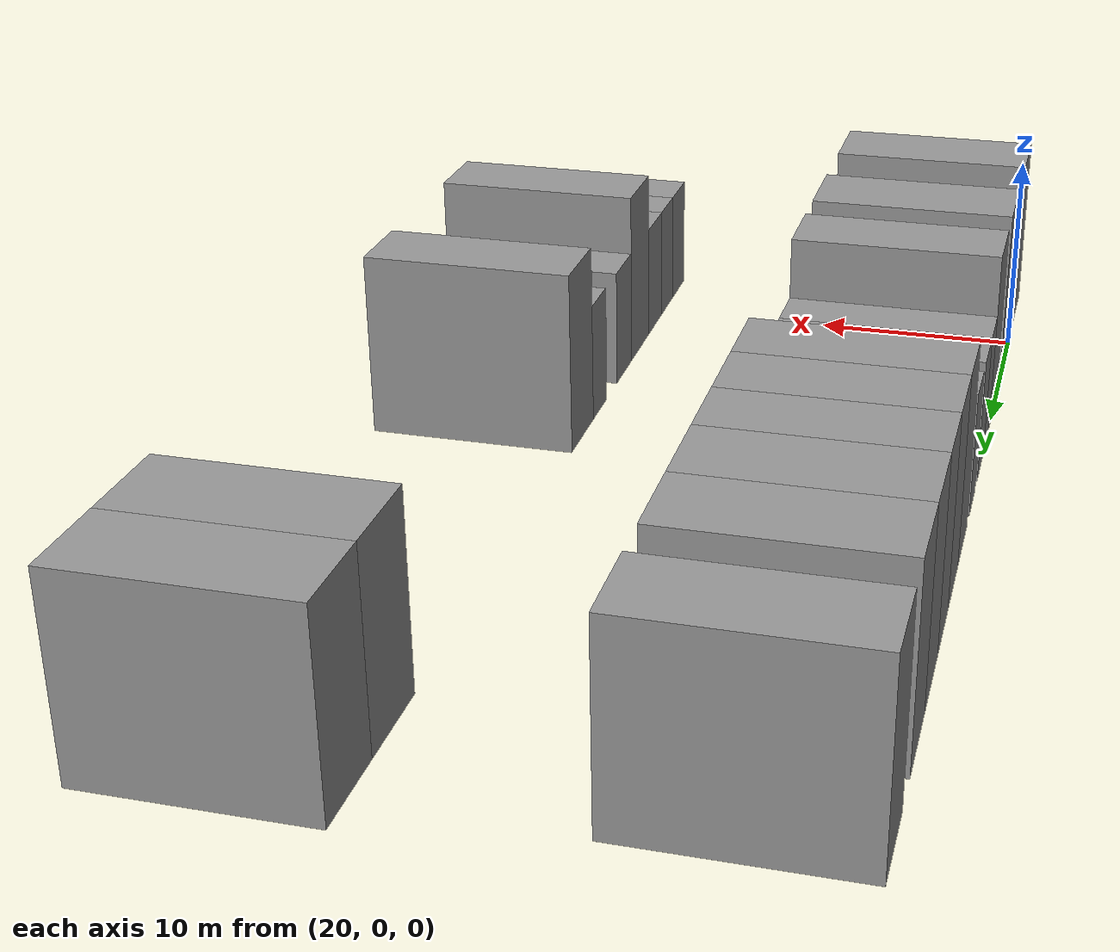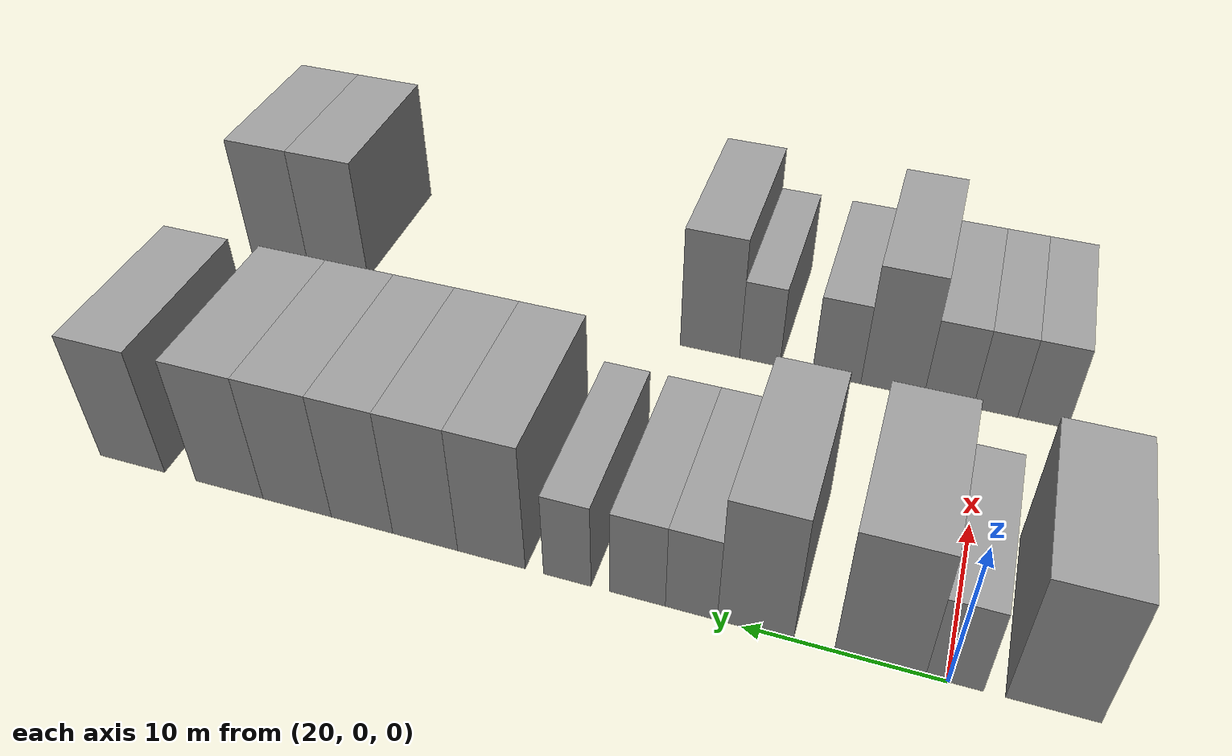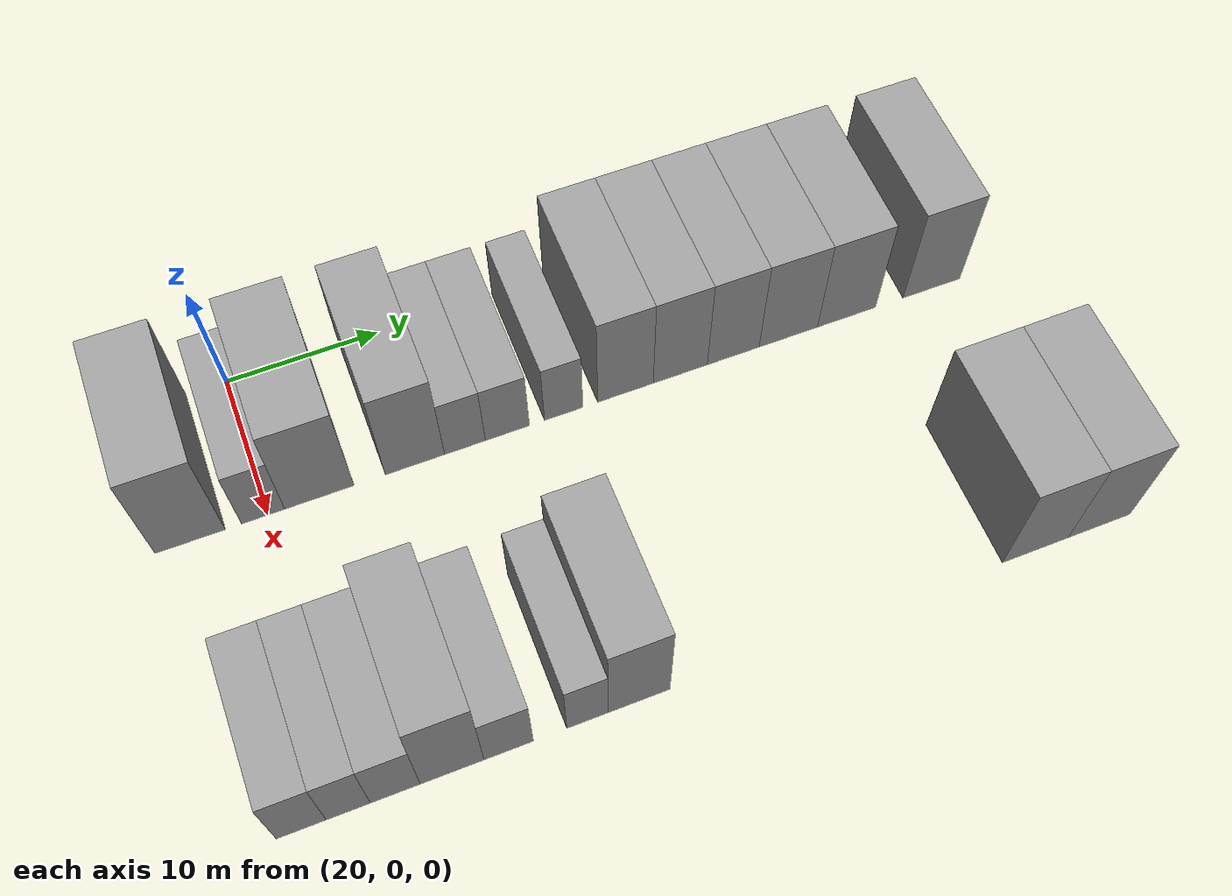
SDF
<sdf version="1.6">
 <world name="default">
  <model name="building_43">
   <static>1</static>
   <pose>25.0000 -4.7868 0 0.000000 0.000000 0.000000</pose>
   <link name="link">
    <pose>0 0 4.50 0 0 0</pose>
    <collision name="collision"><geometry><box><size>10.0000 4.3095 9.0000</size></box></geometry></collision>
    <visual name="visual">
     <cast_shadows>0</cast_shadows>
     <geometry><box><size>10.0000 4.3095 9.0000</size></box></geometry>
     <material>
      <script>
       <uri>model://grey_wall/materials/scripts</uri>
       <uri>model://grey_wall/materials/textures</uri>
       <name>vrc/grey_wall</name>
      </script>
     </material>
    </visual>
   </link>
  </model>
  <model name="building_44">
   <static>1</static>
   <pose>25.0000 -0.2851 0 0.000000 0.000000 0.000000</pose>
   <link name="link">
    <pose>0 0 3.00 0 0 0</pose>
    <collision name="collision"><geometry><box><size>10.0000 2.6940 6.0000</size></box></geometry></collision>
    <visual name="visual">
     <cast_shadows>0</cast_shadows>
     <geometry><box><size>10.0000 2.6940 6.0000</size></box></geometry>
     <material>
      <script>
       <uri>model://grey_wall/materials/scripts</uri>
       <uri>model://grey_wall/materials/textures</uri>
       <name>vrc/grey_wall</name>
      </script>
     </material>
    </visual>
   </link>
  </model>
  <model name="building_45">
   <static>1</static>
   <pose>25.0000 3.2484 0 0.000000 0.000000 0.000000</pose>
   <link name="link">
    <pose>0 0 4.50 0 0 0</pose>
    <collision name="collision"><geometry><box><size>10.0000 4.3729 9.0000</size></box></geometry></collision>
    <visual name="visual">
     <cast_shadows>0</cast_shadows>
     <geometry><box><size>10.0000 4.3729 9.0000</size></box></geometry>
     <material>
      <script>
       <uri>model://grey_wall/materials/scripts</uri>
       <uri>model://grey_wall/materials/textures</uri>
       <name>vrc/grey_wall</name>
      </script>
     </material>
    </visual>
   </link>
  </model>
  <model name="building_46">
   <static>1</static>
   <pose>25.0000 9.3493 0 0.000000 0.000000 0.000000</pose>
   <link name="link">
    <pose>0 0 4.50 0 0 0</pose>
    <collision name="collision"><geometry><box><size>10.0000 3.8289 9.0000</size></box></geometry></collision>
    <visual name="visual">
     <cast_shadows>0</cast_shadows>
     <geometry><box><size>10.0000 3.8289 9.0000</size></box></geometry>
     <material>
      <script>
       <uri>model://grey_wall/materials/scripts</uri>
       <uri>model://grey_wall/materials/textures</uri>
       <name>vrc/grey_wall</name>
      </script>
     </material>
    </visual>
   </link>
  </model>
  <model name="building_47">
   <static>1</static>
   <pose>25.0000 12.5972 0 0.000000 0.000000 0.000000</pose>
   <link name="link">
    <pose>0 0 3.00 0 0 0</pose>
    <collision name="collision"><geometry><box><size>10.0000 2.6668 6.0000</size></box></geometry></collision>
    <visual name="visual">
     <cast_shadows>0</cast_shadows>
     <geometry><box><size>10.0000 2.6668 6.0000</size></box></geometry>
     <material>
      <script>
       <uri>model://grey_wall/materials/scripts</uri>
       <uri>model://grey_wall/materials/textures</uri>
       <name>vrc/grey_wall</name>
      </script>
     </material>
    </visual>
   </link>
  </model>
  <model name="building_48">
   <static>1</static>
   <pose>25.0000 15.3865 0 0.000000 0.000000 0.000000</pose>
   <link name="link">
    <pose>0 0 3.00 0 0 0</pose>
    <collision name="collision"><geometry><box><size>10.0000 2.9118 6.0000</size></box></geometry></collision>
    <visual name="visual">
     <cast_shadows>0</cast_shadows>
     <geometry><box><size>10.0000 2.9118 6.0000</size></box></geometry>
     <material>
      <script>
       <uri>model://grey_wall/materials/scripts</uri>
       <uri>model://grey_wall/materials/textures</uri>
       <name>vrc/grey_wall</name>
      </script>
     </material>
    </visual>
   </link>
  </model>
  <model name="building_49">
   <static>1</static>
   <pose>25.0000 19.1278 0 0.000000 0.000000 0.000000</pose>
   <link name="link">
    <pose>0 0 3.00 0 0 0</pose>
    <collision name="collision"><geometry><box><size>10.0000 2.5707 6.0000</size></box></geometry></collision>
    <visual name="visual">
     <cast_shadows>0</cast_shadows>
     <geometry><box><size>10.0000 2.5707 6.0000</size></box></geometry>
     <material>
      <script>
       <uri>model://grey_wall/materials/scripts</uri>
       <uri>model://grey_wall/materials/textures</uri>
       <name>vrc/grey_wall</name>
      </script>
     </material>
    </visual>
   </link>
  </model>
  <model name="building_50">
   <static>1</static>
   <pose>25.0000 23.2987 0 0.000000 0.000000 0.000000</pose>
   <link name="link">
    <pose>0 0 4.50 0 0 0</pose>
    <collision name="collision"><geometry><box><size>10.0000 3.7711 9.0000</size></box></geometry></collision>
    <visual name="visual">
     <cast_shadows>0</cast_shadows>
     <geometry><box><size>10.0000 3.7711 9.0000</size></box></geometry>
     <material>
      <script>
       <uri>model://grey_wall/materials/scripts</uri>
       <uri>model://grey_wall/materials/textures</uri>
       <name>vrc/grey_wall</name>
      </script>
     </material>
    </visual>
   </link>
  </model>
  <model name="building_51">
   <static>1</static>
   <pose>25.0000 27.0453 0 0.000000 0.000000 0.000000</pose>
   <link name="link">
    <pose>0 0 4.50 0 0 0</pose>
    <collision name="collision"><geometry><box><size>10.0000 3.7221 9.0000</size></box></geometry></collision>
    <visual name="visual">
     <cast_shadows>0</cast_shadows>
     <geometry><box><size>10.0000 3.7221 9.0000</size></box></geometry>
     <material>
      <script>
       <uri>model://grey_wall/materials/scripts</uri>
       <uri>model://grey_wall/materials/textures</uri>
       <name>vrc/grey_wall</name>
      </script>
     </material>
    </visual>
   </link>
  </model>
  <model name="building_52">
   <static>1</static>
   <pose>25.0000 30.7157 0 0.000000 0.000000 0.000000</pose>
   <link name="link">
    <pose>0 0 4.50 0 0 0</pose>
    <collision name="collision"><geometry><box><size>10.0000 3.6187 9.0000</size></box></geometry></collision>
    <visual name="visual">
     <cast_shadows>0</cast_shadows>
     <geometry><box><size>10.0000 3.6187 9.0000</size></box></geometry>
     <material>
      <script>
       <uri>model://grey_wall/materials/scripts</uri>
       <uri>model://grey_wall/materials/textures</uri>
       <name>vrc/grey_wall</name>
      </script>
     </material>
    </visual>
   </link>
  </model>
  <model name="building_53">
   <static>1</static>
   <pose>25.0000 34.5919 0 0.000000 0.000000 0.000000</pose>
   <link name="link">
    <pose>0 0 4.50 0 0 0</pose>
    <collision name="collision"><geometry><box><size>10.0000 4.1337 9.0000</size></box></geometry></collision>
    <visual name="visual">
     <cast_shadows>0</cast_shadows>
     <geometry><box><size>10.0000 4.1337 9.0000</size></box></geometry>
     <material>
      <script>
       <uri>model://grey_wall/materials/scripts</uri>
       <uri>model://grey_wall/materials/textures</uri>
       <name>vrc/grey_wall</name>
      </script>
     </material>
    </visual>
   </link>
  </model>
  <model name="building_54">
   <static>1</static>
   <pose>25.0000 38.7498 0 0.000000 0.000000 0.000000</pose>
   <link name="link">
    <pose>0 0 4.50 0 0 0</pose>
    <collision name="collision"><geometry><box><size>10.0000 4.1821 9.0000</size></box></geometry></collision>
    <visual name="visual">
     <cast_shadows>0</cast_shadows>
     <geometry><box><size>10.0000 4.1821 9.0000</size></box></geometry>
     <material>
      <script>
       <uri>model://grey_wall/materials/scripts</uri>
       <uri>model://grey_wall/materials/textures</uri>
       <name>vrc/grey_wall</name>
      </script>
     </material>
    </visual>
   </link>
  </model>
  <model name="building_55">
   <static>1</static>
   <pose>25.0000 44.9251 0 0.000000 0.000000 0.000000</pose>
   <link name="link">
    <pose>0 0 4.50 0 0 0</pose>
    <collision name="collision"><geometry><box><size>10.0000 4.1687 9.0000</size></box></geometry></collision>
    <visual name="visual">
     <cast_shadows>0</cast_shadows>
     <geometry><box><size>10.0000 4.1687 9.0000</size></box></geometry>
     <material>
      <script>
       <uri>model://grey_wall/materials/scripts</uri>
       <uri>model://grey_wall/materials/textures</uri>
       <name>vrc/grey_wall</name>
      </script>
     </material>
    </visual>
   </link>
  </model>
  <model name="building_137">
   <static>1</static>
   <pose>44.0000 -3.2504 0 0.000000 0.000000 0.000000</pose>
   <link name="link">
    <pose>0 0 3.00 0 0 0</pose>
    <collision name="collision"><geometry><box><size>10.0000 2.8259 6.0000</size></box></geometry></collision>
    <visual name="visual">
     <cast_shadows>0</cast_shadows>
     <geometry><box><size>10.0000 2.8259 6.0000</size></box></geometry>
     <material>
      <script>
       <uri>model://grey_wall/materials/scripts</uri>
       <uri>model://grey_wall/materials/textures</uri>
       <name>vrc/grey_wall</name>
      </script>
     </material>
    </visual>
   </link>
  </model>
  <model name="building_138">
   <static>1</static>
   <pose>44.0000 -0.5750 0 0.000000 0.000000 0.000000</pose>
   <link name="link">
    <pose>0 0 3.00 0 0 0</pose>
    <collision name="collision"><geometry><box><size>10.0000 2.5250 6.0000</size></box></geometry></collision>
    <visual name="visual">
     <cast_shadows>0</cast_shadows>
     <geometry><box><size>10.0000 2.5250 6.0000</size></box></geometry>
     <material>
      <script>
       <uri>model://grey_wall/materials/scripts</uri>
       <uri>model://grey_wall/materials/textures</uri>
       <name>vrc/grey_wall</name>
      </script>
     </material>
    </visual>
   </link>
  </model>
  <model name="building_139">
   <static>1</static>
   <pose>44.0000 2.1249 0 0.000000 0.000000 0.000000</pose>
   <link name="link">
    <pose>0 0 3.00 0 0 0</pose>
    <collision name="collision"><geometry><box><size>10.0000 2.8748 6.0000</size></box></geometry></collision>
    <visual name="visual">
     <cast_shadows>0</cast_shadows>
     <geometry><box><size>10.0000 2.8748 6.0000</size></box></geometry>
     <material>
      <script>
       <uri>model://grey_wall/materials/scripts</uri>
       <uri>model://grey_wall/materials/textures</uri>
       <name>vrc/grey_wall</name>
      </script>
     </material>
    </visual>
   </link>
  </model>
  <model name="building_140">
   <static>1</static>
   <pose>44.0000 5.4307 0 0.000000 0.000000 0.000000</pose>
   <link name="link">
    <pose>0 0 4.50 0 0 0</pose>
    <collision name="collision"><geometry><box><size>10.0000 3.7366 9.0000</size></box></geometry></collision>
    <visual name="visual">
     <cast_shadows>0</cast_shadows>
     <geometry><box><size>10.0000 3.7366 9.0000</size></box></geometry>
     <material>
      <script>
       <uri>model://grey_wall/materials/scripts</uri>
       <uri>model://grey_wall/materials/textures</uri>
       <name>vrc/grey_wall</name>
      </script>
     </material>
    </visual>
   </link>
  </model>
  <model name="building_141">
   <static>1</static>
   <pose>44.0000 8.7635 0 0.000000 0.000000 0.000000</pose>
   <link name="link">
    <pose>0 0 3.00 0 0 0</pose>
    <collision name="collision"><geometry><box><size>10.0000 2.9290 6.0000</size></box></geometry></collision>
    <visual name="visual">
     <cast_shadows>0</cast_shadows>
     <geometry><box><size>10.0000 2.9290 6.0000</size></box></geometry>
     <material>
      <script>
       <uri>model://grey_wall/materials/scripts</uri>
       <uri>model://grey_wall/materials/textures</uri>
       <name>vrc/grey_wall</name>
      </script>
     </material>
    </visual>
   </link>
  </model>
  <model name="building_142">
   <static>1</static>
   <pose>44.0000 13.4836 0 0.000000 0.000000 0.000000</pose>
   <link name="link">
    <pose>0 0 3.00 0 0 0</pose>
    <collision name="collision"><geometry><box><size>10.0000 2.5113 6.0000</size></box></geometry></collision>
    <visual name="visual">
     <cast_shadows>0</cast_shadows>
     <geometry><box><size>10.0000 2.5113 6.0000</size></box></geometry>
     <material>
      <script>
       <uri>model://grey_wall/materials/scripts</uri>
       <uri>model://grey_wall/materials/textures</uri>
       <name>vrc/grey_wall</name>
      </script>
     </material>
    </visual>
   </link>
  </model>
  <model name="building_143">
   <static>1</static>
   <pose>44.0000 16.6275 0 0.000000 0.000000 0.000000</pose>
   <link name="link">
    <pose>0 0 4.50 0 0 0</pose>
    <collision name="collision"><geometry><box><size>10.0000 3.7764 9.0000</size></box></geometry></collision>
    <visual name="visual">
     <cast_shadows>0</cast_shadows>
     <geometry><box><size>10.0000 3.7764 9.0000</size></box></geometry>
     <material>
      <script>
       <uri>model://grey_wall/materials/scripts</uri>
       <uri>model://grey_wall/materials/textures</uri>
       <name>vrc/grey_wall</name>
      </script>
     </material>
    </visual>
   </link>
  </model>
  <model name="building_144">
   <static>1</static>
   <pose>44.0000 42.1673 0 0.000000 0.000000 0.000000</pose>
   <link name="link">
    <pose>0 0 4.50 0 0 0</pose>
    <collision name="collision"><geometry><box><size>10.0000 4.4344 9.0000</size></box></geometry></collision>
    <visual name="visual">
     <cast_shadows>0</cast_shadows>
     <geometry><box><size>10.0000 4.4344 9.0000</size></box></geometry>
     <material>
      <script>
       <uri>model://grey_wall/materials/scripts</uri>
       <uri>model://grey_wall/materials/textures</uri>
       <name>vrc/grey_wall</name>
      </script>
     </material>
    </visual>
   </link>
  </model>
  <model name="building_145">
   <static>1</static>
   <pose>44.0000 46.5251 0 0.000000 0.000000 0.000000</pose>
   <link name="link">
    <pose>0 0 4.50 0 0 0</pose>
    <collision name="collision"><geometry><box><size>10.0000 4.2812 9.0000</size></box></geometry></collision>
    <visual name="visual">
     <cast_shadows>0</cast_shadows>
     <geometry><box><size>10.0000 4.2812 9.0000</size></box></geometry>
     <material>
      <script>
       <uri>model://grey_wall/materials/scripts</uri>
       <uri>model://grey_wall/materials/textures</uri>
       <name>vrc/grey_wall</name>
      </script>
     </material>
    </visual>
   </link>
  </model>
 </world>
</sdf>
